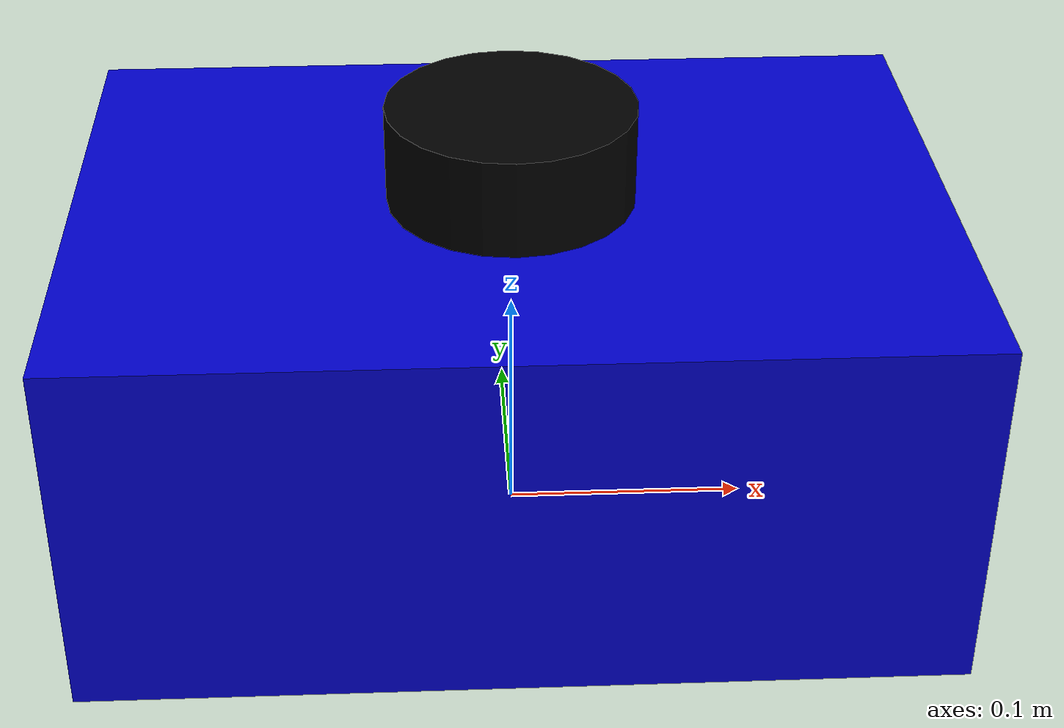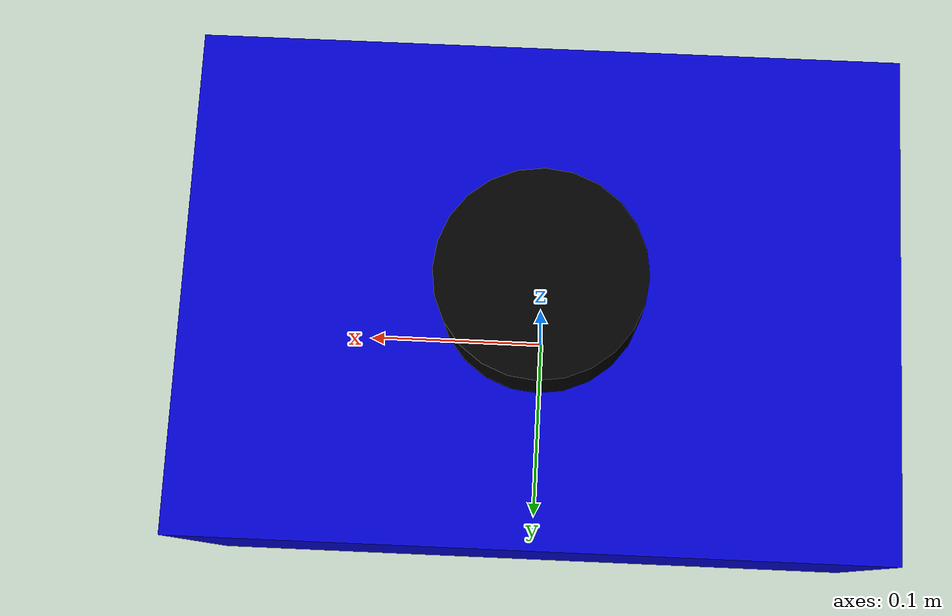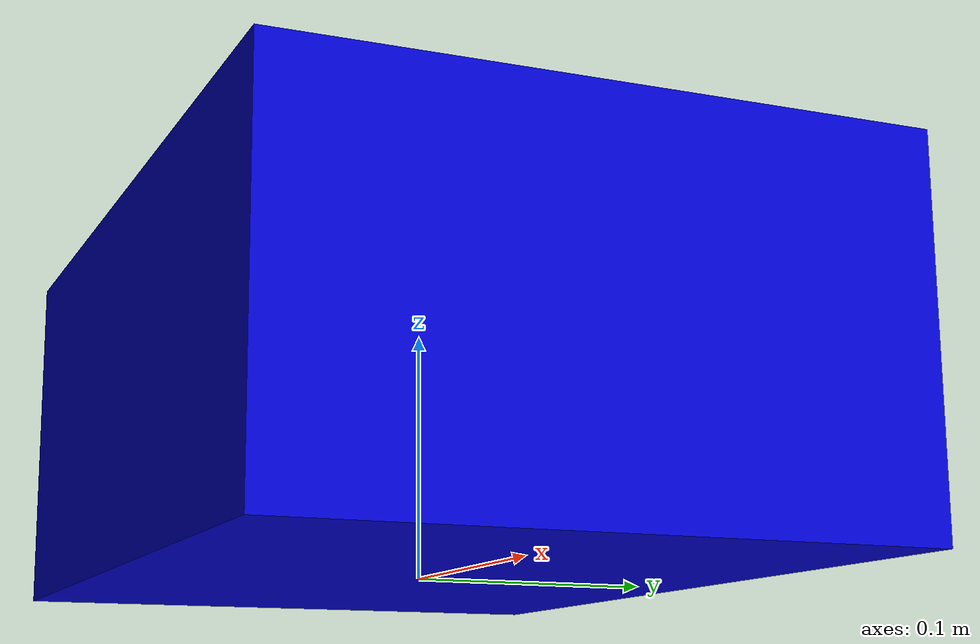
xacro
<?xml version="1.0"?>
<robot name="diff_robot" xmlns:xacro="http://www.ros.org/wiki/xacro">

  <!-- Base Link -->
  <link name="base_footprint"/>

  <link name="base_link">
    <visual>
      <geometry>
        <box size="0.35 0.25 0.15"/>
      </geometry>
      <material name="blue">
        <color rgba="0 0 0.8 1"/>
      </material>
    </visual>
    <collision>
      <geometry>
        <box size="0.35 0.25 0.15"/>
      </geometry>
    </collision>
    <inertial>
      <mass value="5.0"/>
      <inertia ixx="0.1" ixy="0.0" ixz="0.0" iyy="0.1" iyz="0.0" izz="0.1"/>
    </inertial>
  </link>

  <joint name="base_footprint_joint" type="fixed">
    <parent link="base_footprint"/>
    <child link="base_link"/>
    <origin xyz="0 0 0.075" rpy="0 0 0"/>
  </joint>

  <!-- Lidar -->
  <link name="lidar_link">
    <visual>
      <geometry>
        <cylinder radius="0.05" length="0.04"/>
      </geometry>
      <material name="black">
        <color rgba="0 0 0 1"/>
      </material>
    </visual>
    <collision>
      <geometry>
        <cylinder radius="0.05" length="0.04"/>
      </geometry>
    </collision>
    <inertial>
      <mass value="0.1"/>
      <inertia ixx="0.001" ixy="0.0" ixz="0.0" iyy="0.001" iyz="0.0" izz="0.001"/>
    </inertial>
  </link>

  <joint name="lidar_joint" type="fixed">
    <parent link="base_link"/>
    <child link="lidar_link"/>
    <origin xyz="0 0 0.095" rpy="0 0 0"/>
  </joint>

</robot>
